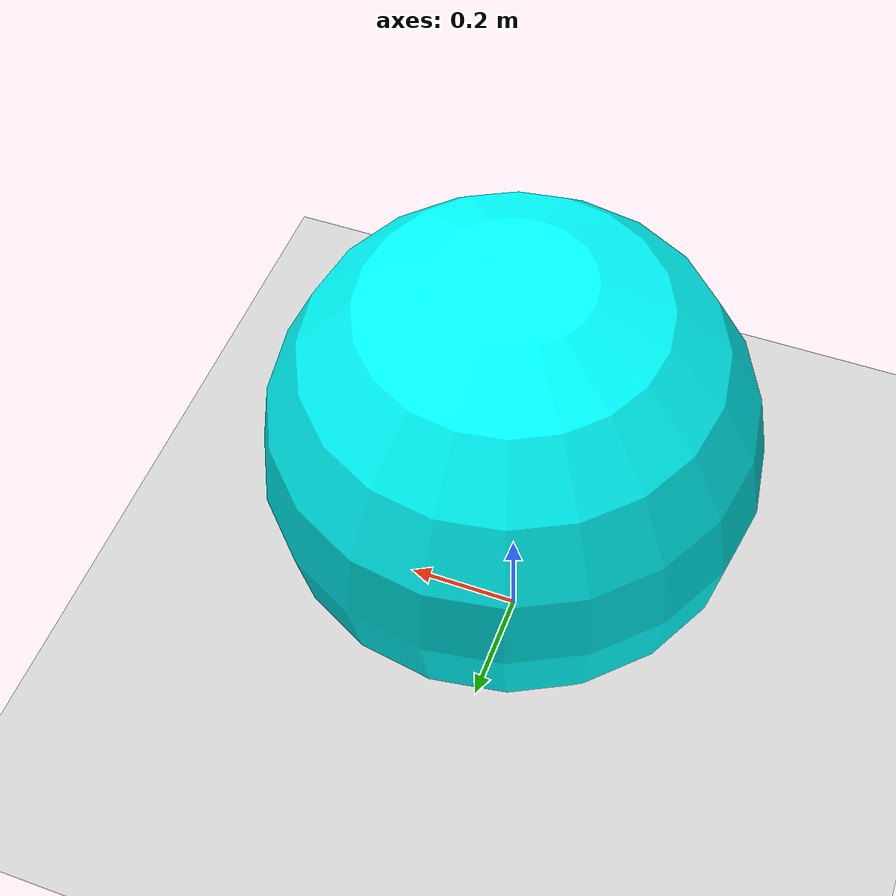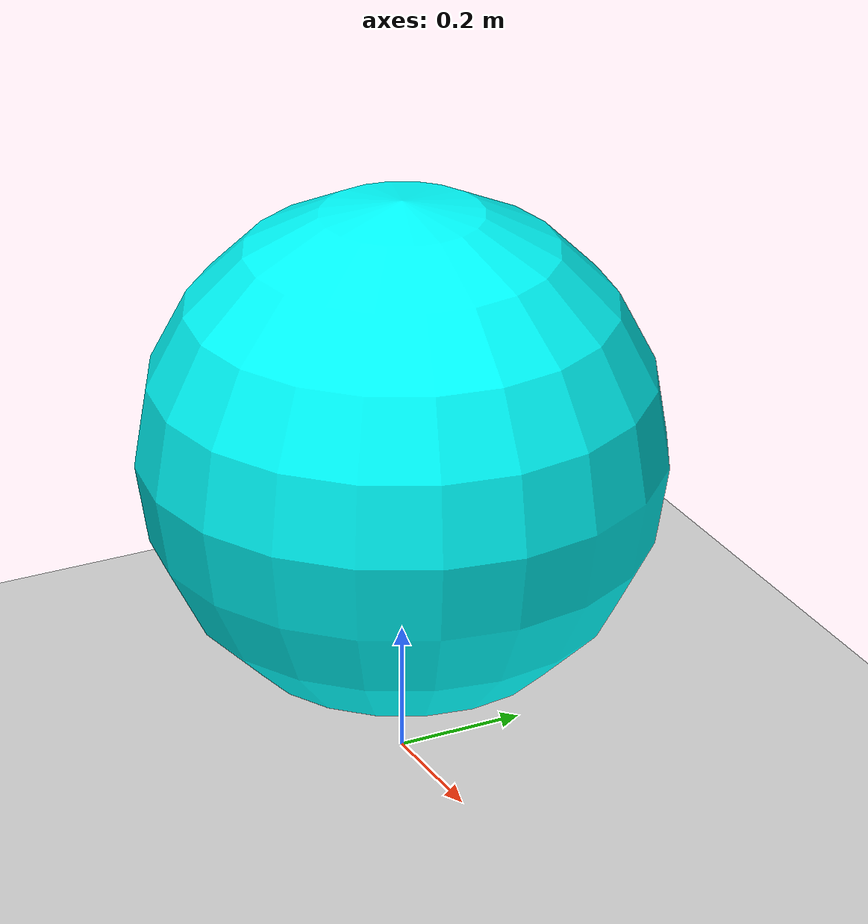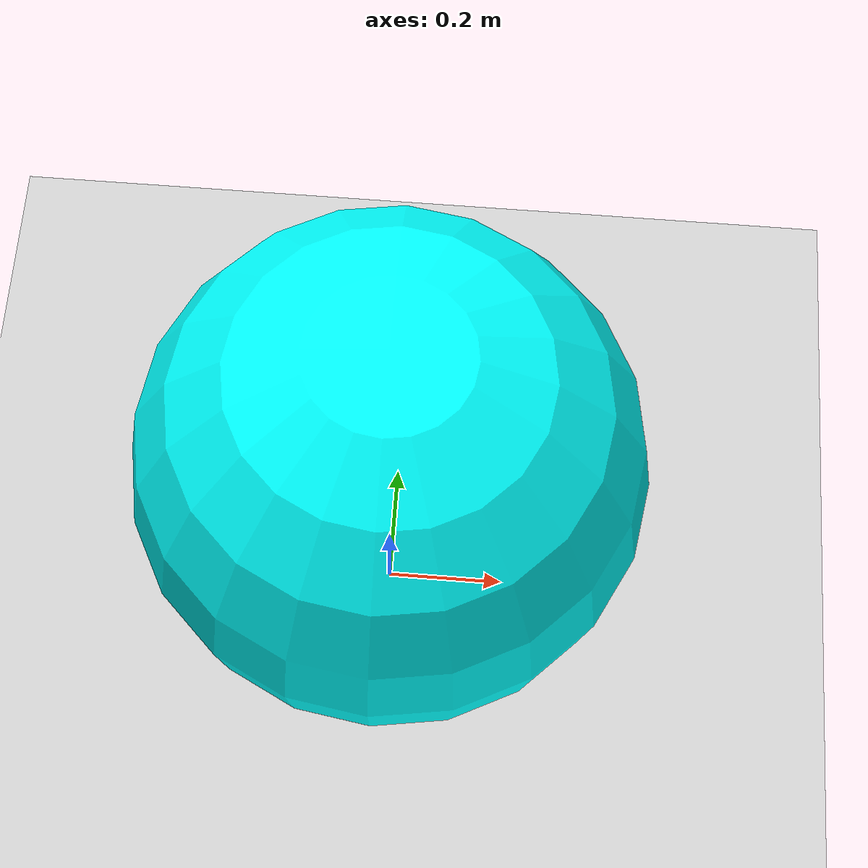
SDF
<sdf version='1.10'>
  <world name='empty'>
    <physics name='1ms' type='ode'>

      <max_step_size>0.001</max_step_size>
      <real_time_factor>1</real_time_factor>
      <real_time_update_rate>1000</real_time_update_rate>
    </physics>
    <plugin name='gz::sim::systems::Physics' filename='gz-sim-physics-system'/>
    <plugin name='gz::sim::systems::UserCommands' filename='gz-sim-user-commands-system'/>
    <plugin name='gz::sim::systems::SceneBroadcaster' filename='gz-sim-scene-broadcaster-system'/>
    <plugin name='gz::sim::systems::Contact' filename='gz-sim-contact-system'/>
    <gravity>0 0 -9.8000000000000007</gravity>
    <magnetic_field>5.5644999999999998e-06 2.2875799999999999e-05 -4.2388400000000002e-05</magnetic_field>
    <atmosphere type='adiabatic'/>
    <scene>
      <ambient>0.400000006 0.400000006 0.400000006 1</ambient>
      <background>0.699999988 0.699999988 0.699999988 1</background>
      <shadows>true</shadows>
    </scene>
    <model name='ground_plane'>
      <static>true</static>
      <link name='link'>
        <collision name='collision'>
          <geometry>
            <plane>
              <normal>0 0 1</normal>
              <size>100 100</size>
            </plane>
          </geometry>
          <surface>
            <friction>
              <ode/>
            </friction>
            <bounce/>
            <contact/>
          </surface>
        </collision>
        <visual name='visual'>
          <geometry>
            <plane>
              <normal>0 0 1</normal>
              <size>100 100</size>
            </plane>
          </geometry>
          <material>
            <ambient>0.800000012 0.800000012 0.800000012 1</ambient>
            <diffuse>0.800000012 0.800000012 0.800000012 1</diffuse>
            <specular>0.800000012 0.800000012 0.800000012 1</specular>
          </material>
        </visual>
        <pose>0 0 0 0 0 0</pose>
        <inertial>
          <pose>0 0 0 0 0 0</pose>
          <mass>1</mass>
          <inertia>
            <ixx>1</ixx>
            <ixy>0</ixy>
            <ixz>0</ixz>
            <iyy>1</iyy>
            <iyz>0</iyz>
            <izz>1</izz>
          </inertia>
        </inertial>
        <enable_wind>false</enable_wind>
      </link>
      <pose>0 0 0 0 0 0</pose>
      <self_collide>false</self_collide>
    </model>
    <light name='sun' type='directional'>
      <pose>0 0 10 0 0 0</pose>
      <cast_shadows>true</cast_shadows>
      <intensity>1</intensity>
      <direction>-0.5 0.10000000000000001 -0.90000000000000002</direction>
      <diffuse>0.800000012 0.800000012 0.800000012 1</diffuse>
      <specular>0.200000003 0.200000003 0.200000003 1</specular>
      <attenuation>
        <range>1000</range>
        <linear>0.01</linear>
        <constant>0.90000000000000002</constant>
        <quadratic>0.001</quadratic>
      </attenuation>
      <spot>
        <inner_angle>0</inner_angle>
        <outer_angle>0</outer_angle>
        <falloff>0</falloff>
      </spot>
    </light>
      <!-- The moving sphere model -->
    <model name="moving_sphere">
      <static>false</static>

      <link name="ball">
        <pose>0 0 0.5 0 0 0</pose>
        <inertial>
          <mass>1</mass>
        </inertial>
        <kinematic>true</kinematic>

        <collision name="ball_collision">
          <geometry>
            <sphere>
              <radius>0.4</radius>
            </sphere>
          </geometry>
        </collision>

        <visual name="ball_visual">
          <geometry>
            <sphere>
              <radius>0.4</radius>
            </sphere>
          </geometry>
          <material>
            <diffuse>0 1 1 1</diffuse>
            <ambient>0 1 1 1</ambient>
          </material>
        </visual>
      </link>

      <!-- Velocity control plugin -->
      <plugin name="gz::sim::systems::VelocityControl" filename="gz-sim-velocity-control-system" linear_z="false"/>
      </model>

  </world>
</sdf>
